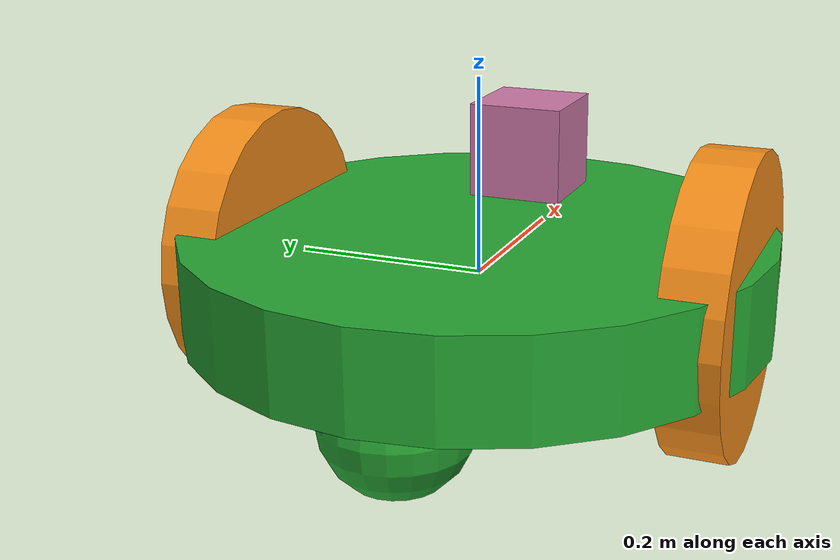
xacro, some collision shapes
<?xml version='1.0'?>

<robot name="my_robot" xmlns:xacro="http://www.ros.org/wiki/xacro">

  <xacro:include filename="$(find my_robot)/urdf/my_robot.gazebo" />

  <link name="robot_footprint"></link>

  <joint name="robot_footprint_joint" type="fixed">
    <origin xyz="0 0 0" rpy="0 0 0" />
    <parent link="robot_footprint"/>
    <child link="chassis" />
  </joint>

  <!-- Chassis ======================================================= -->
  <link name='chassis'>
    <pose>0 0 0.1 0 0 0</pose>

    <inertial>
      <mass value="15.0"/>
      <origin xyz="0.0 0 0" rpy=" 0 0 0"/>
      <inertia
          ixx="0.1" ixy="0" ixz="0"
          iyy="0.1" iyz="0"
          izz="0.1"
      />
    </inertial>

    <collision name='collision'>
      <origin xyz="0 0 0" rpy="0 0 1.5707"/>
      <geometry>
        <cylinder radius="0.3" length="0.1"/>
      </geometry>
    </collision>

    <visual name='chassis_visual'>
      <origin xyz="0 0 0" rpy="0 0 1.5707"/>
      <geometry>
        <cylinder radius="0.3" length="0.1"/>
      </geometry>
    </visual>

    <collision name='back_caster_collision'>
      <origin xyz="-0.2 0 -0.075" rpy=" 0 0 0"/>
      <geometry>
        <sphere radius="0.07499"/>
      </geometry>
    </collision>

    <visual name='back_caster_visual'>
      <origin xyz="-0.2 0 -0.075" rpy=" 0 0 0"/>
      <geometry>
        <sphere radius="0.075"/>
      </geometry>
    </visual>

    <collision name='front_caster_collision'>
      <origin xyz="0.2 0 -0.075" rpy=" 0 0 0"/>
      <geometry>
        <sphere radius="0.07499"/>
      </geometry>
    </collision>

    <visual name='front_caster_visual'>
      <origin xyz="0.2 0 -0.075" rpy=" 0 0 0"/>
      <geometry>
        <sphere radius="0.075"/>
      </geometry>
    </visual>

  </link>

  <gazebo reference="chassis">
      <material>Gazebo/Green</material>
  </gazebo>

  <!-- Wheels ======================================================= -->

  <link name="left_wheel">

    <inertial>
      <mass value="5.0"/>
      <origin xyz="0.0 0 0" rpy="0 1.5707 1.5707"/>
      <inertia
          ixx="0.1" ixy="0"   ixz="0"
                    iyy="0.1" iyz="0"
                              izz="0.1"
      />
    </inertial>

    <collision name='left_wheel_collision'>
      <origin xyz="0 0.1 0" rpy="0 1.5707 1.5707"/>
      <geometry>
        <cylinder radius="0.15" length="0.06"/>
      </geometry>
    </collision>

    <visual name='left_wheel_visual'>
      <origin xyz="0 0.1 0" rpy="0 1.5707 1.5707"/>
      <geometry>
        <cylinder radius="0.15" length="0.06"/>
      </geometry>
    </visual>
  </link>
  <gazebo reference="left_wheel">
      <material>Gazebo/Orange</material>
  </gazebo>

  <link name="right_wheel">
    <inertial>
      <mass value="5.0"/>
      <origin xyz="0.0 0 0" rpy="0 1.5707 1.5707"/>
      <inertia
          ixx="0.1" ixy="0"   ixz="0"
                    iyy="0.1" iyz="0"
                              izz="0.1"
      />
    </inertial>

    <collision name='right_wheel_collision'>
      <origin xyz="0 -0.1 0" rpy="0 1.5707 1.5707"/>
      <geometry>
        <cylinder radius="0.15" length="0.06"/>
      </geometry>
    </collision>

    <visual name='right_wheel_visual'>
      <origin xyz="0 -0.1 0" rpy="0 1.5707 1.5707"/>
      <geometry>
        <cylinder radius="0.15" length="0.06"/>
      </geometry>
    </visual>
  </link>
  <gazebo reference="right_wheel">
      <material>Gazebo/Orange</material>
  </gazebo>

  <joint type="continuous" name="left_wheel_hinge">
    <origin xyz="0 0.15 0" rpy="0 0 0"/>
    <child link="left_wheel"/>
    <parent link="chassis"/>
    <axis xyz="0 1 0" rpy="0 0 0"/>
    <limit effort="10000" velocity="1000"/>
    <dynamics damping="1.0" friction="1.0"/>
  </joint>

  <joint type="continuous" name="right_wheel_hinge">
    <origin xyz="0 -0.15 0" rpy="0 0 0"/>
    <child link="right_wheel"/>
    <parent link="chassis"/>
    <axis xyz="0 1 0" rpy="0 0 0"/>
    <limit effort="10000" velocity="1000"/>
    <dynamics damping="1.0" friction="1.0"/>
  </joint>

  <!-- Sensors ======================================================== -->
  <link name="camera">

    <inertial>
      <mass value="0.1"/>
      <origin xyz="0.13 0 0" rpy="0 0 0"/>
      <inertia
          ixx="1e-6" ixy="0"   ixz="0"
                    iyy="1e-6" iyz="0"
                              izz="1e-6"
      />
      <box_inertia m="0.1" x="0.05" y="0.05" z="0.05" />
    </inertial>

    <collision name='camera_collision'>
      <origin xyz="0.13 0 0" rpy="0 1.5707 0"/>
      <geometry>
        <cylinder radius="0.03" length="0.06"/>
      </geometry>
    </collision>

    <visual name='camera_visual'>
      <origin xyz="0.13 0 0" rpy="0 1.5707 0"/>
      <geometry>
        <cylinder radius="0.03" length="0.06"/>
      </geometry>
    </visual>
  </link>
  <joint name="camera_optical_joint" type="fixed">
    <origin xyz="0 0 0" rpy="-1.5707 0 -1.5707"/>
    <parent link="camera"/>
    <child link="camera_link_optical"/>
  </joint>

  <link name="camera_link_optical">
  </link>
  <gazebo reference="camera_link_optical">
      <material>Gazebo/Black</material>
  </gazebo>

  <joint type="fixed" name="camera_joint">
    <origin xyz="0.2 0 0" rpy="0 0 0"/>
    <child link="camera"/>
    <parent link="chassis"/>
    <axis xyz="0 1 0" rpy="0 0 0"/>
  </joint>

  <!-- Lidar  -->
  <link name="hokuyo">
    <inertial>
      <mass value="1e-5"/>
      <origin xyz="0 0 0" rpy="0 0 0"/>
      <inertia
          ixx="1e-6" ixy="0"   ixz="0"
                    iyy="1e-6" iyz="0"
                              izz="1e-6"
      />
    </inertial>

    <collision name='hokuyo_collision'>
      <origin xyz="0 0 0" rpy="0 0 0"/>
      <geometry>
        <box size="0.1 0.1 0.1"/>
      </geometry>
    </collision>

    <visual name='hokuyo_visual'>
      <origin xyz="0 0 0" rpy="0 0 0"/>
      <geometry >
        <mesh filename="package://my_robot/meshes/hokuyo.dae"/>
      </geometry>
    </visual>
  </link>

  <joint type="fixed" name="hokuyo_joint">
    <origin xyz="0.15 0 0.1" rpy="0 0 0"/>
    <child link="hokuyo"/>
    <parent link="chassis"/>
    <axis xyz="0 1 0" rpy="0 0 0"/>
  </joint>
</robot>
